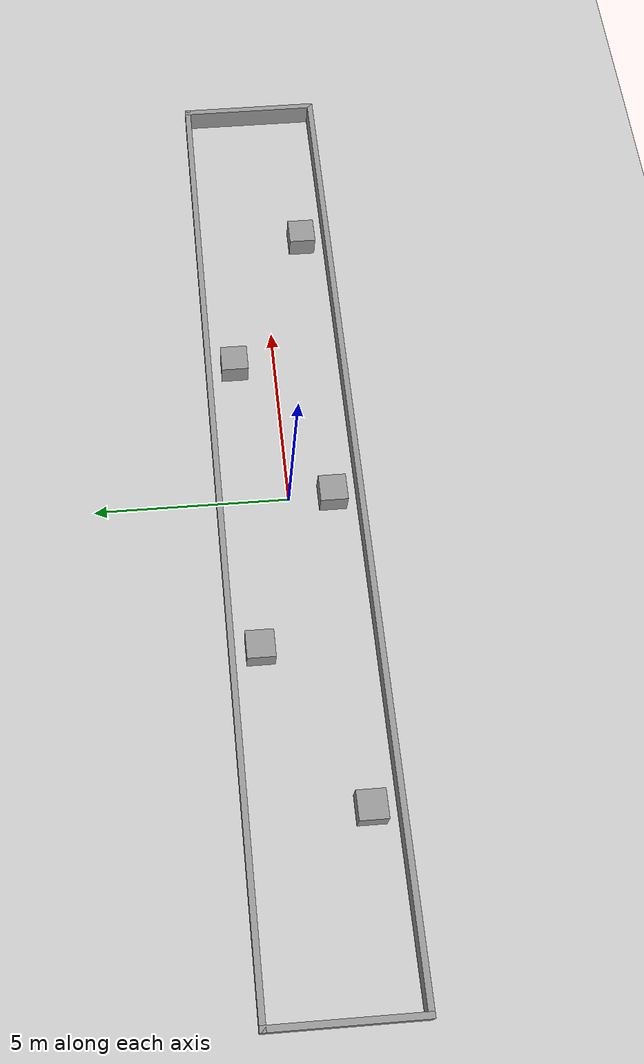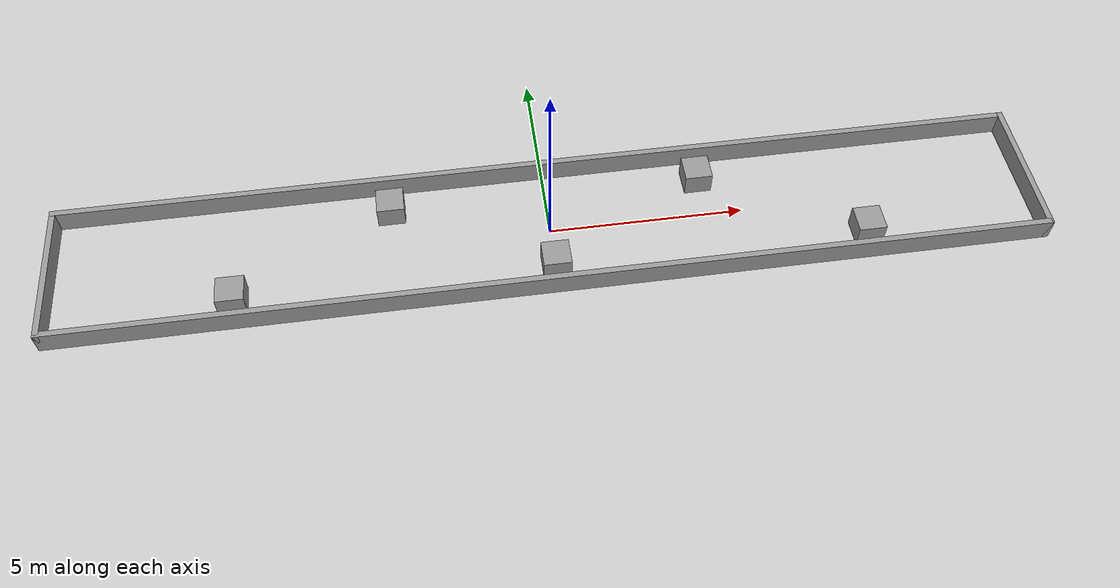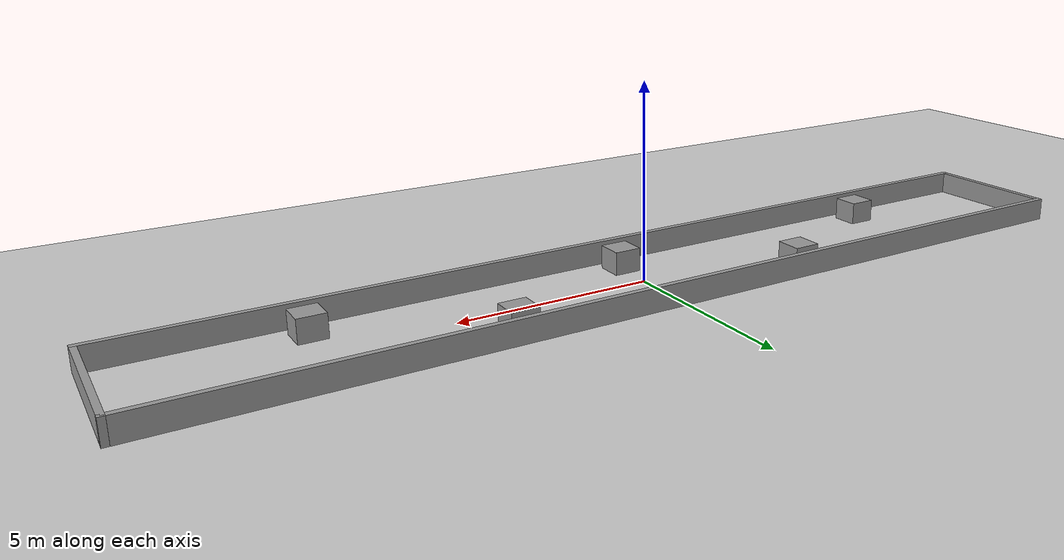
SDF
<?xml version="1.0" ?>
<sdf version='1.7'>
  <world name='default'>
    <plugin name='gazebo_ros_state' filename='libgazebo_ros_state.so'>
      <ros>
        <namespace>/</namespace>
      </ros>
      <update_rate>1000.0</update_rate>
    </plugin>

    <light name='sun' type='directional'>
      <cast_shadows>1</cast_shadows>
      <pose>0 0 10 0 -0 0</pose>
      <diffuse>0.8 0.8 0.8 1</diffuse>
      <specular>0.2 0.2 0.2 1</specular>
      <attenuation>
        <range>1000</range>
        <constant>0.9</constant>
        <linear>0.01</linear>
        <quadratic>0.001</quadratic>
      </attenuation>
      <direction>-0.5 0.1 -0.9</direction>
      <spot>
        <inner_angle>0</inner_angle>
        <outer_angle>0</outer_angle>
        <falloff>0</falloff>
      </spot>
    </light>
    <model name='ground_plane'>
      <static>1</static>
      <link name='link'>
        <collision name='collision'>
          <geometry>
            <plane>
              <normal>0 0 1</normal>
              <size>100 100</size>
            </plane>
          </geometry>
          <surface>
            <friction>
              <ode>
                <mu>100</mu>
                <mu2>50</mu2>
              </ode>
              <torsional>
                <ode/>
              </torsional>
            </friction>
            <contact>
              <ode/>
            </contact>
            <bounce/>
          </surface>
          <max_contacts>10</max_contacts>
        </collision>
        <visual name='visual'>
          <cast_shadows>0</cast_shadows>
          <geometry>
            <plane>
              <normal>0 0 1</normal>
              <size>100 100</size>
            </plane>
          </geometry>
          <material>
            <script>
              <uri>file://media/materials/scripts/gazebo.material</uri>
              <name>Gazebo/Grey</name>
            </script>
          </material>
        </visual>
        <self_collide>0</self_collide>
        <enable_wind>0</enable_wind>
        <kinematic>0</kinematic>
      </link>
    </model>
    <gravity>0 0 -9.8</gravity>
    <magnetic_field>6e-06 2.3e-05 -4.2e-05</magnetic_field>
    <atmosphere type='adiabatic'/>
    <physics type='ode'>
      <max_step_size>0.001</max_step_size>
      <real_time_factor>1</real_time_factor>
      <real_time_update_rate>1000</real_time_update_rate>
    </physics>
    <scene>
      <ambient>0.4 0.4 0.4 1</ambient>
      <background>0.7 0.7 0.7 1</background>
      <shadows>1</shadows>
    </scene>
    <audio>
      <device>default</device>
    </audio>
    <wind/>
    <spherical_coordinates>
      <surface_model>EARTH_WGS84</surface_model>
      <latitude_deg>0</latitude_deg>
      <longitude_deg>0</longitude_deg>
      <elevation>0</elevation>
      <heading_deg>0</heading_deg>
    </spherical_coordinates>
  <model name='offset_obstacles'>
    <pose>0 0 0 0 -0 0</pose>
    <link name='Wall_0'>
      <collision name='Wall_0_Collision'>
        <geometry><box><size>25.1500 0.1500 0.6000</size></box></geometry>
        <pose>0 0 0.3000 0 -0 0</pose>
      </collision>
      <visual name='Wall_0_Visual'>
        <pose>0 0 0.3000 0 -0 0</pose>
        <geometry><box><size>25.1500 0.1500 0.6000</size></box></geometry>
        <material>
          <script>
            <uri>file://media/materials/scripts/gazebo.material</uri>
            <name>Gazebo/Grey</name>
          </script>
          <ambient>1 1 1 1</ambient>
        </material>
      </visual>
      <pose>0.0000 -1.8000 0 0 -0 0.00000</pose>
    </link>
    <link name='Wall_1'>
      <collision name='Wall_1_Collision'>
        <geometry><box><size>3.7500 0.1500 0.6000</size></box></geometry>
        <pose>0 0 0.3000 0 -0 0</pose>
      </collision>
      <visual name='Wall_1_Visual'>
        <pose>0 0 0.3000 0 -0 0</pose>
        <geometry><box><size>3.7500 0.1500 0.6000</size></box></geometry>
        <material>
          <script>
            <uri>file://media/materials/scripts/gazebo.material</uri>
            <name>Gazebo/Grey</name>
          </script>
          <ambient>1 1 1 1</ambient>
        </material>
      </visual>
      <pose>12.5000 0.0000 0 0 -0 1.57080</pose>
    </link>
    <link name='Wall_2'>
      <collision name='Wall_2_Collision'>
        <geometry><box><size>25.1500 0.1500 0.6000</size></box></geometry>
        <pose>0 0 0.3000 0 -0 0</pose>
      </collision>
      <visual name='Wall_2_Visual'>
        <pose>0 0 0.3000 0 -0 0</pose>
        <geometry><box><size>25.1500 0.1500 0.6000</size></box></geometry>
        <material>
          <script>
            <uri>file://media/materials/scripts/gazebo.material</uri>
            <name>Gazebo/Grey</name>
          </script>
          <ambient>1 1 1 1</ambient>
        </material>
      </visual>
      <pose>0.0000 1.8000 0 0 -0 3.14159</pose>
    </link>
    <link name='Wall_3'>
      <collision name='Wall_3_Collision'>
        <geometry><box><size>3.7500 0.1500 0.6000</size></box></geometry>
        <pose>0 0 0.3000 0 -0 0</pose>
      </collision>
      <visual name='Wall_3_Visual'>
        <pose>0 0 0.3000 0 -0 0</pose>
        <geometry><box><size>3.7500 0.1500 0.6000</size></box></geometry>
        <material>
          <script>
            <uri>file://media/materials/scripts/gazebo.material</uri>
            <name>Gazebo/Grey</name>
          </script>
          <ambient>1 1 1 1</ambient>
        </material>
      </visual>
      <pose>-12.5000 0.0000 0 0 -0 -1.57080</pose>
    </link>
    <link name='Obstacle_4'>
      <collision name='Obstacle_4_Collision'>
        <geometry><box><size>0.7000 0.7000 0.6000</size></box></geometry>
        <pose>0 0 0.3000 0 -0 0</pose>
      </collision>
      <visual name='Obstacle_4_Visual'>
        <pose>0 0 0.3000 0 -0 0</pose>
        <geometry><box><size>0.7000 0.7000 0.6000</size></box></geometry>
        <material>
          <script>
            <uri>file://media/materials/scripts/gazebo.material</uri>
            <name>Gazebo/Grey</name>
          </script>
          <ambient>1 1 1 1</ambient>
        </material>
      </visual>
      <pose>-8.0000 -1.1000 0 0 -0 0.00000</pose>
    </link>
    <link name='Obstacle_5'>
      <collision name='Obstacle_5_Collision'>
        <geometry><box><size>0.7000 0.7000 0.6000</size></box></geometry>
        <pose>0 0 0.3000 0 -0 0</pose>
      </collision>
      <visual name='Obstacle_5_Visual'>
        <pose>0 0 0.3000 0 -0 0</pose>
        <geometry><box><size>0.7000 0.7000 0.6000</size></box></geometry>
        <material>
          <script>
            <uri>file://media/materials/scripts/gazebo.material</uri>
            <name>Gazebo/Grey</name>
          </script>
          <ambient>1 1 1 1</ambient>
        </material>
      </visual>
      <pose>-4.0000 1.1000 0 0 -0 0.00000</pose>
    </link>
    <link name='Obstacle_6'>
      <collision name='Obstacle_6_Collision'>
        <geometry><box><size>0.7000 0.7000 0.6000</size></box></geometry>
        <pose>0 0 0.3000 0 -0 0</pose>
      </collision>
      <visual name='Obstacle_6_Visual'>
        <pose>0 0 0.3000 0 -0 0</pose>
        <geometry><box><size>0.7000 0.7000 0.6000</size></box></geometry>
        <material>
          <script>
            <uri>file://media/materials/scripts/gazebo.material</uri>
            <name>Gazebo/Grey</name>
          </script>
          <ambient>1 1 1 1</ambient>
        </material>
      </visual>
      <pose>0.0000 -1.1000 0 0 -0 0.00000</pose>
    </link>
    <link name='Obstacle_7'>
      <collision name='Obstacle_7_Collision'>
        <geometry><box><size>0.7000 0.7000 0.6000</size></box></geometry>
        <pose>0 0 0.3000 0 -0 0</pose>
      </collision>
      <visual name='Obstacle_7_Visual'>
        <pose>0 0 0.3000 0 -0 0</pose>
        <geometry><box><size>0.7000 0.7000 0.6000</size></box></geometry>
        <material>
          <script>
            <uri>file://media/materials/scripts/gazebo.material</uri>
            <name>Gazebo/Grey</name>
          </script>
          <ambient>1 1 1 1</ambient>
        </material>
      </visual>
      <pose>4.0000 1.1000 0 0 -0 0.00000</pose>
    </link>
    <link name='Obstacle_8'>
      <collision name='Obstacle_8_Collision'>
        <geometry><box><size>0.7000 0.7000 0.6000</size></box></geometry>
        <pose>0 0 0.3000 0 -0 0</pose>
      </collision>
      <visual name='Obstacle_8_Visual'>
        <pose>0 0 0.3000 0 -0 0</pose>
        <geometry><box><size>0.7000 0.7000 0.6000</size></box></geometry>
        <material>
          <script>
            <uri>file://media/materials/scripts/gazebo.material</uri>
            <name>Gazebo/Grey</name>
          </script>
          <ambient>1 1 1 1</ambient>
        </material>
      </visual>
      <pose>8.0000 -1.1000 0 0 -0 0.00000</pose>
    </link>
    <static>1</static>
  </model>
  </world>
</sdf>
